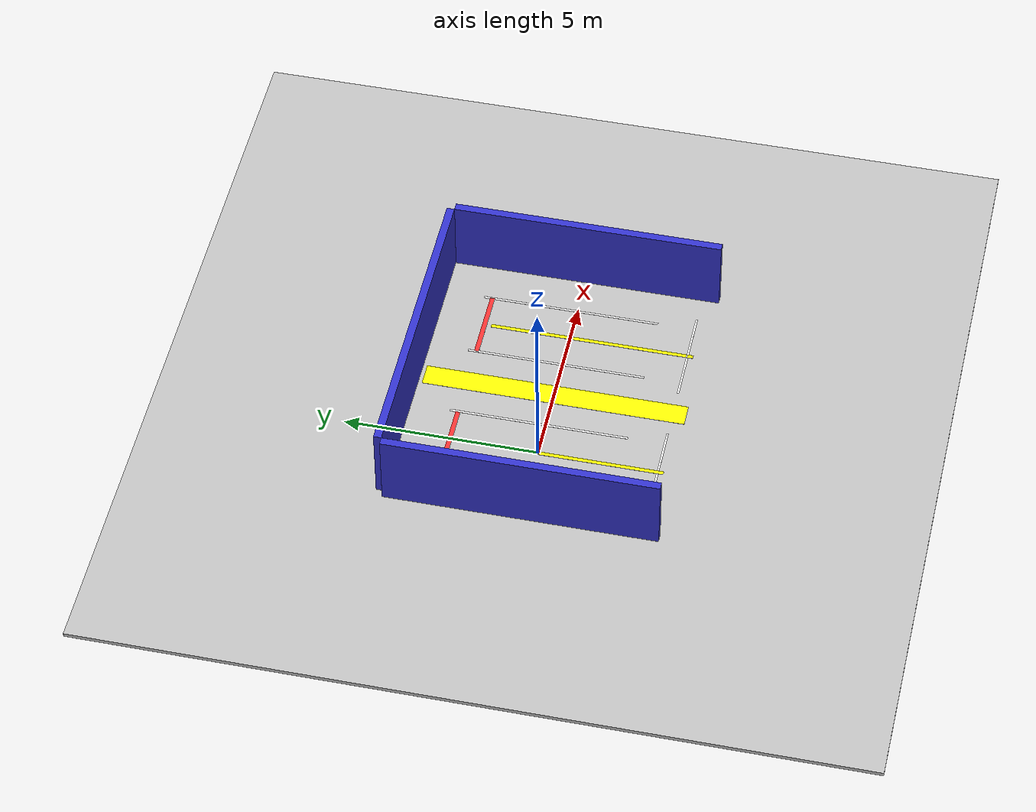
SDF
<?xml version='1.0' encoding='utf-8'?>
<sdf version="1.8">
  <world name="carwash_sp">
    <physics name="1ms" type="ode">
      <max_step_size>0.001</max_step_size>
      <real_time_factor>1.0</real_time_factor>
      <real_time_update_rate>1000</real_time_update_rate>
    </physics>

    <plugin filename="libignition-gazebo-physics-system.so" name="ignition::gazebo::systems::Physics" />
    <plugin filename="libignition-gazebo-scene-broadcaster-system.so" name="ignition::gazebo::systems::SceneBroadcaster" />
    <plugin filename="gz-sim-contact-system" name="gz::sim::systems::Contact" />
    <plugin filename="ignition-gazebo-sensors-system" name="ignition::gazebo::systems::Sensors">
      <render_engine>ogre2</render_engine>
    </plugin>
    <plugin filename="ignition-gazebo-user-commands-system" name="ignition::gazebo::systems::UserCommands" />

    <light type="directional" name="sun">
      <pose>0 0 30 0 0 0</pose>
      <diffuse>0.8 0.8 0.8 1</diffuse>
      <specular>0.2 0.2 0.2 1</specular>
      <direction>-0.5 0.1 -0.9</direction>
    </light>

    <model name="floor">
      <static>true</static>
      <pose>2 0 -0.05 0 0 0</pose>
      <link name="floor_link">
        <collision name="collision">
          <geometry>
            <box>
              <size>20 20 0.1</size>
            </box>
          </geometry>
        </collision>
        <visual name="visual">
          <geometry>
            <box>
              <size>20 20 0.1</size>
            </box>
          </geometry>
          <material>
            <ambient>0.75 0.75 0.75 1</ambient>
            <diffuse>0.75 0.75 0.75 1</diffuse>
          </material>
        </visual>
      </link>
    </model>

    <model name="wall_north">
      <static>true</static>
      <pose>2 3.6 1 0 0 0</pose>
      <link name="link">
        <collision name="collision">
          <geometry>
            <box>
              <size>8 0.2 2</size>
            </box>
          </geometry>
        </collision>
        <visual name="visual">
          <geometry>
            <box>
              <size>8 0.2 2</size>
            </box>
          </geometry>
          <material>
            <ambient>0.2 0.2 0.8 1</ambient>
            <diffuse>0.2 0.2 0.8 1</diffuse>
          </material>
        </visual>
      </link>
    </model>

    <model name="wall_west">
      <static>true</static>
      <pose>-2.1 0 1 0 0 0</pose>
      <link name="link">
        <collision name="collision">
          <geometry>
            <box>
              <size>0.2 7 2</size>
            </box>
          </geometry>
        </collision>
        <visual name="visual">
          <geometry>
            <box>
              <size>0.2 7 2</size>
            </box>
          </geometry>
          <material>
            <ambient>0.2 0.2 0.8 1</ambient>
            <diffuse>0.2 0.2 0.8 1</diffuse>
          </material>
        </visual>
      </link>
    </model>

    <model name="wall_east">
      <static>true</static>
      <pose>6.1 0 1 0 0 0</pose>
      <link name="link">
        <collision name="collision">
          <geometry>
            <box>
              <size>0.2 7 2</size>
            </box>
          </geometry>
        </collision>
        <visual name="visual">
          <geometry>
            <box>
              <size>0.2 7 2</size>
            </box>
          </geometry>
          <material>
            <ambient>0.2 0.2 0.8 1</ambient>
            <diffuse>0.2 0.2 0.8 1</diffuse>
          </material>
        </visual>
      </link>
    </model>

    <model name="washbay_marks">
      <static>true</static>
      <pose>0 0 0 0 0 0</pose>
      <link name="marks_link">

        <visual name="center_guide_line_left">
          <pose>0 -0.55 0.001 0 0 0</pose>
          <geometry>
            <box>
              <size>0.10 5.3 0.002</size>
            </box>
          </geometry>
          <material>
            <ambient>1 1 0 1</ambient>
            <diffuse>1 1 0 1</diffuse>
          </material>
        </visual>

        <visual name="left_guide_line_left">
          <pose>-0.95 0.2 0.001 0 0 0</pose>
          <geometry>
            <box>
              <size>0.06 4.6 0.002</size>
            </box>
          </geometry>
          <material>
            <ambient>1 1 1 1</ambient>
            <diffuse>1 1 1 1</diffuse>
          </material>
        </visual>

        <visual name="right_guide_line_left">
          <pose>0.95 0.2 0.001 0 0 0</pose>
          <geometry>
            <box>
              <size>0.06 4.6 0.002</size>
            </box>
          </geometry>
          <material>
            <ambient>1 1 1 1</ambient>
            <diffuse>1 1 1 1</diffuse>
          </material>
        </visual>

        <visual name="stop_line_left">
          <pose>0 2.28 0.001 0 0 0</pose>
          <geometry>
            <box>
              <size>1.9 0.12 0.002</size>
            </box>
          </geometry>
          <material>
            <ambient>1 0.2 0.2 1</ambient>
            <diffuse>1 0.2 0.2 1</diffuse>
          </material>
        </visual>

        <visual name="entry_line_left">
          <pose>0 -3.05 0.001 0 0 0</pose>
          <geometry>
            <box>
              <size>2.6 0.05 0.002</size>
            </box>
          </geometry>
          <material>
            <ambient>1 1 1 1</ambient>
            <diffuse>1 1 1 1</diffuse>
          </material>
        </visual>

        <visual name="center_guide_line_right">
          <pose>4 -0.55 0.001 0 0 0</pose>
          <geometry>
            <box>
              <size>0.10 5.3 0.002</size>
            </box>
          </geometry>
          <material>
            <ambient>1 1 0 1</ambient>
            <diffuse>1 1 0 1</diffuse>
          </material>
        </visual>

        <visual name="left_guide_line_right">
          <pose>3.05 0.2 0.001 0 0 0</pose>
          <geometry>
            <box>
              <size>0.06 4.6 0.002</size>
            </box>
          </geometry>
          <material>
            <ambient>1 1 1 1</ambient>
            <diffuse>1 1 1 1</diffuse>
          </material>
        </visual>

        <visual name="right_guide_line_right">
          <pose>4.95 0.2 0.001 0 0 0</pose>
          <geometry>
            <box>
              <size>0.06 4.6 0.002</size>
            </box>
          </geometry>
          <material>
            <ambient>1 1 1 1</ambient>
            <diffuse>1 1 1 1</diffuse>
          </material>
        </visual>

        <visual name="stop_line_right">
          <pose>4 2.28 0.001 0 0 0</pose>
          <geometry>
            <box>
              <size>1.9 0.12 0.002</size>
            </box>
          </geometry>
          <material>
            <ambient>1 0.2 0.2 1</ambient>
            <diffuse>1 0.2 0.2 1</diffuse>
          </material>
        </visual>

        <visual name="entry_line_right">
          <pose>4 -3.05 0.001 0 0 0</pose>
          <geometry>
            <box>
              <size>2.6 0.05 0.002</size>
            </box>
          </geometry>
          <material>
            <ambient>1 1 1 1</ambient>
            <diffuse>1 1 1 1</diffuse>
          </material>
        </visual>

        <visual name="middle_yellow_band">
          <pose>2 0 0.001 0 0 0</pose>
          <geometry>
            <box>
              <size>0.6 6.8 0.002</size>
            </box>
          </geometry>
          <material>
            <ambient>1 1 0 1</ambient>
            <diffuse>1 1 0 1</diffuse>
          </material>
        </visual>

      </link>
    </model>

    </world>
</sdf>
